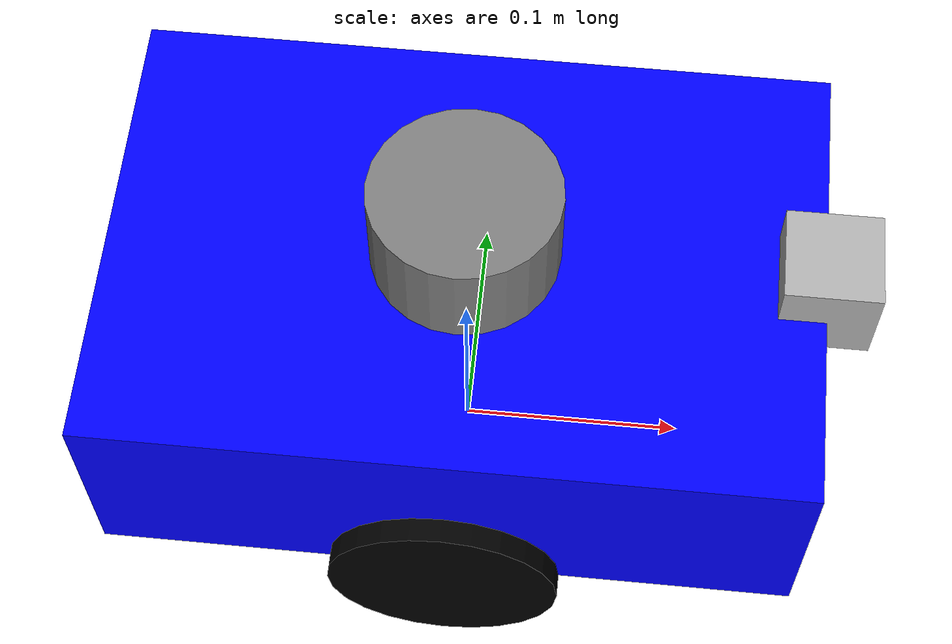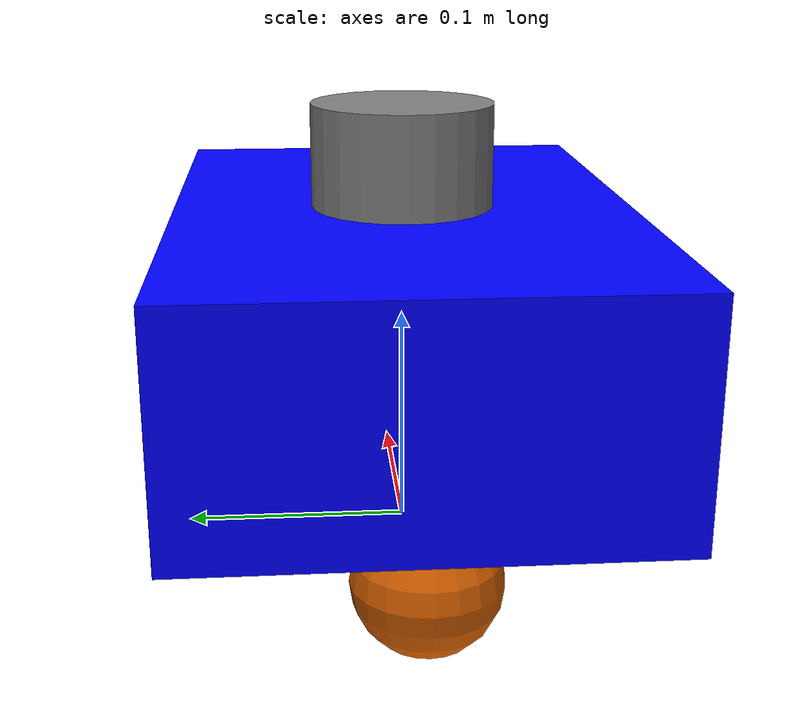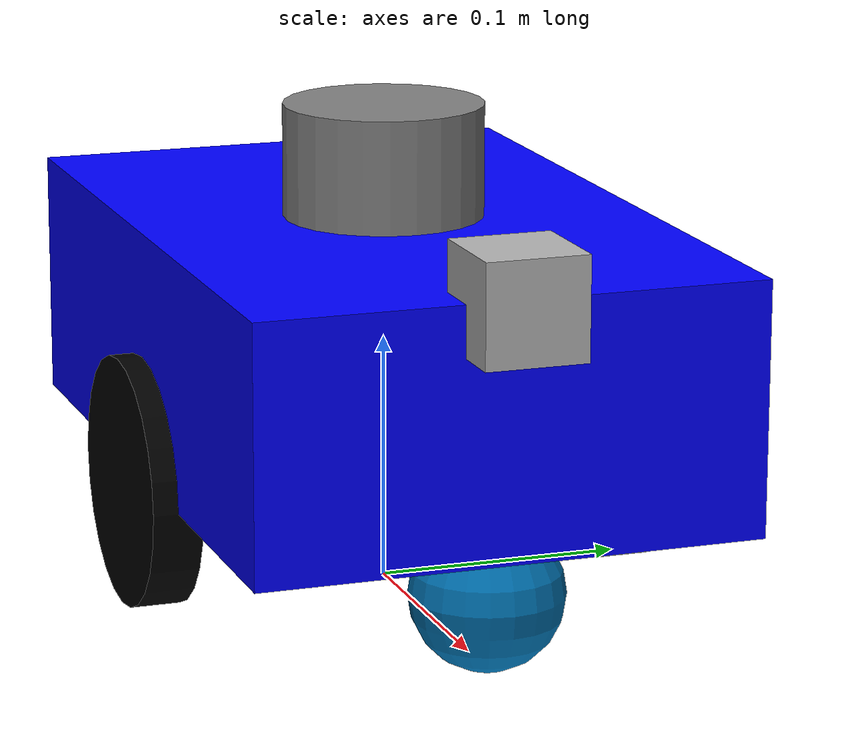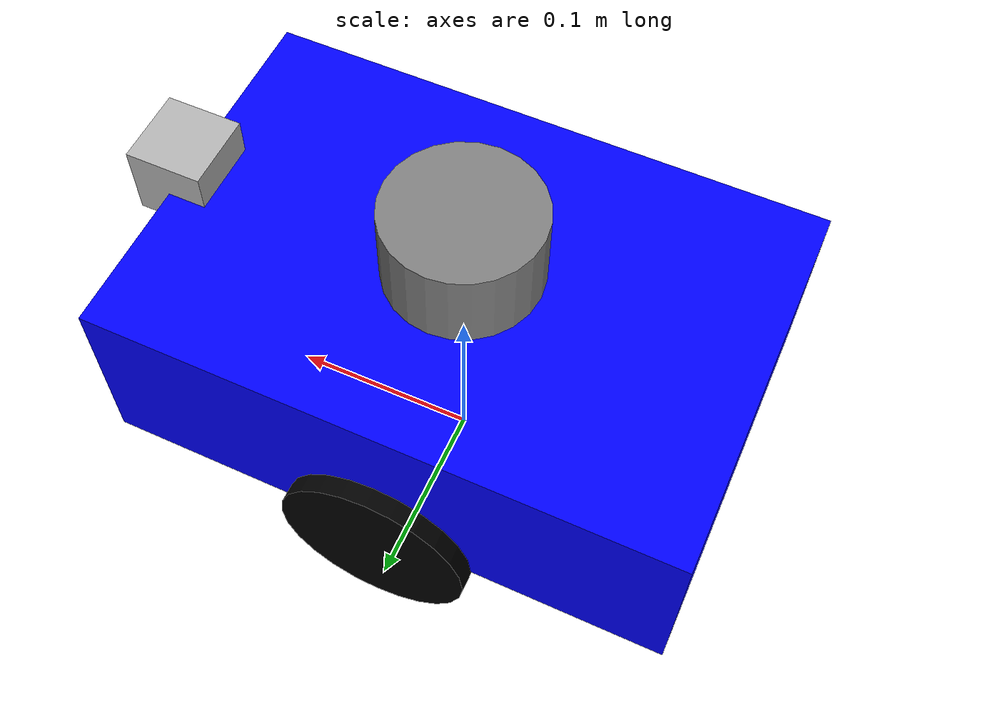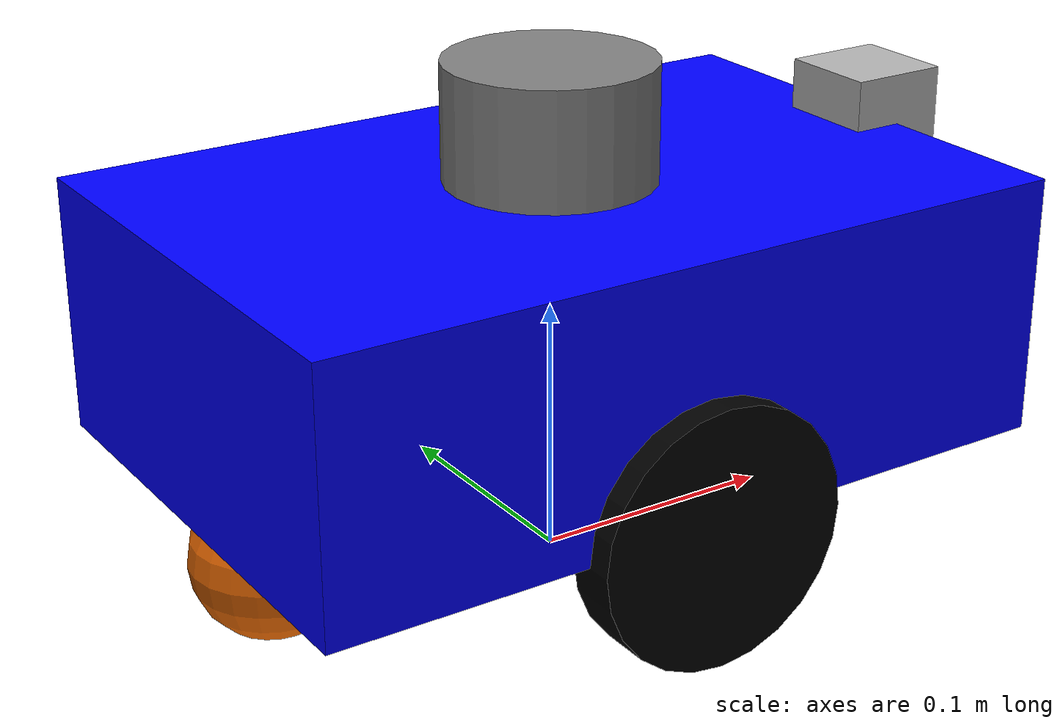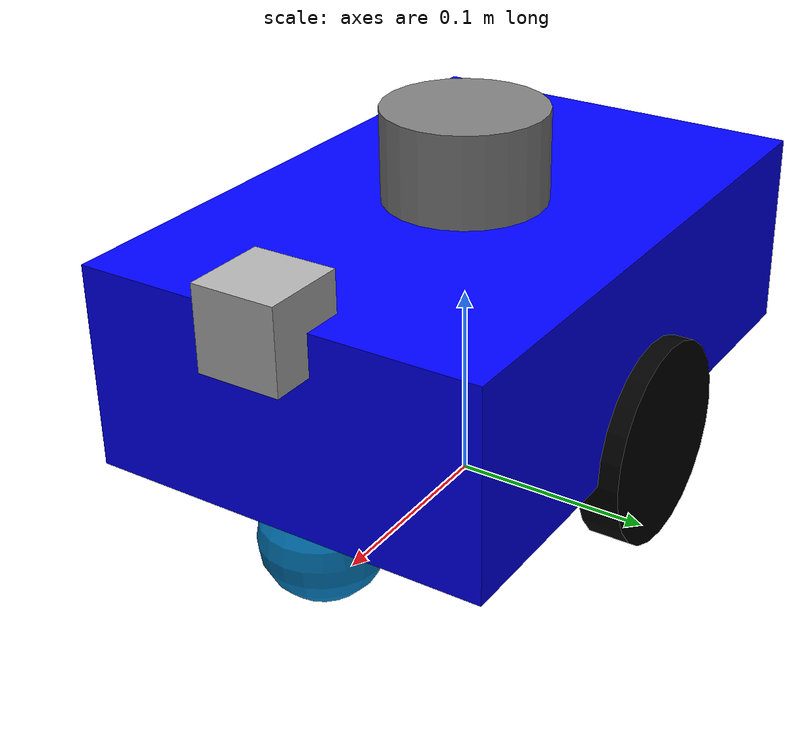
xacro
<?xml version="1.0"?>
<robot name="nexus_ads" xmlns:xacro="http://www.ros.org/wiki/xacro">
    <link name="base_footprint" />
    <joint name="base_footprint_joint" type="fixed">
        <parent link="base_footprint" />
        <child link="base_link" />
        <origin xyz="0 0 0.0" />
    </joint>

    <link name="base_link">
        <visual>
            <origin xyz="0 0 0.10" />
            <geometry>
                <box size="0.3 0.2 0.1" />
            </geometry>
            <material name="blue">
                <color rgba="0 0 1 1" />
            </material>
        </visual>

        <collision>
            <origin xyz="0 0 0.10" />
            <geometry>
                <box size="0.3 0.2 0.1" />
            </geometry>
        </collision>

        <inertial>
            <mass value="5.0" />
            <origin xyz="0 0 0" />
            <inertia ixx="0.1" iyy="0.1" izz="0.1"
                ixy="0" ixz="0" iyz="0" />
        </inertial>
    </link>

    <joint name="left_wheel_joint" type="continuous">
        <parent link="base_link" />
        <child link="left_wheel" />
        <origin xyz="0 0.1 0.05" />
        <axis xyz="0 1 0" />
    </joint>

    <link name="left_wheel">
        <visual>
            <origin rpy="1.5708 0 0" />
            <geometry>
                <cylinder radius="0.05" length="0.02" />
            </geometry>
            <material name="black">
                <color rgba="0 0 0 1" />
            </material>
        </visual>

        <collision>
            <origin rpy="1.5708 0 0" />
            <geometry>
                <cylinder radius="0.05" length="0.02" />
            </geometry>
        </collision>

        <inertial>
            <mass value="0.5" />
            <origin xyz="0 0 0" />
            <inertia ixx="0.001" iyy="0.001" izz="0.001"
                ixy="0" ixz="0" iyz="0" />
        </inertial>
    </link>

    <joint name="right_wheel_joint" type="continuous">
        <parent link="base_link" />
        <child link="right_wheel" />
        <origin xyz="0 -0.1 0.05" />
        <axis xyz="0 1 0" />
    </joint>

    <link name="right_wheel">
        <visual>
            <origin rpy="1.5708 0 0" />
            <geometry>
                <cylinder radius="0.05" length="0.02" />
            </geometry>
            <material name="black">
                <color rgba="0 0 0 1" />
            </material>
        </visual>

        <collision>
            <origin rpy="1.5708 0 0" />
            <geometry>
                <cylinder radius="0.05" length="0.02" />
            </geometry>
        </collision>

        <inertial>
            <mass value="0.5" />
            <origin xyz="0 0 0" />
            <inertia ixx="0.001" iyy="0.001" izz="0.001"
                ixy="0" ixz="0" iyz="0" />
        </inertial>
    </link>

    <link name="caster_wheel_front">
        <visual>
            <geometry>
                <sphere radius="0.03" />
            </geometry>
        </visual>
        <collision>
            <geometry>
                <sphere radius="0.03" />
            </geometry>
        </collision>
        <inertial>
            <mass value="0.2" />
            <inertia ixx="0.0001" iyy="0.0001" izz="0.0001"
                ixy="0" ixz="0" iyz="0" />
        </inertial>
    </link>
    <joint name="caster_front_joint" type="fixed">
        <parent link="base_link" />
        <child link="caster_wheel_front" />
        <origin xyz="0.12 0 0.03" />
        <axis xyz="0 0 1" />
    </joint>

    <link name="caster_wheel_back">
        <visual>
            <geometry>
                <sphere radius="0.03" />
            </geometry>
        </visual>
        <collision>
            <geometry>
                <sphere radius="0.03" />
            </geometry>
        </collision>
        <inertial>
            <origin xyz="0 0 0" />
            <mass value="0.2" />
            <inertia ixx="0.0001" iyy="0.0001" izz="0.0001"
                ixy="0" ixz="0" iyz="0" />
        </inertial>
    </link>
    <joint name="caster_back_joint" type="fixed">
        <parent link="base_link" />
        <child link="caster_wheel_back" />
        <origin xyz="-0.12 0 0.03" />
        <axis xyz="0 0 1" />
    </joint>

    <!-- LiDAR -->
    <link name="lidar_link">
        <visual>
            <origin xyz="0 0 0.02" />
            <geometry>
                <cylinder radius="0.04" length="0.05" />
            </geometry>
            <material name="gray">
                <color rgba="0.5 0.5 0.5 1" />
            </material>
        </visual>
        <collision>
            <origin xyz="0 0 0.02" />
            <geometry>
                <cylinder radius="0.04" length="0.05" />
            </geometry>
        </collision>
        <inertial>
            <mass value="0.3" />
            <origin xyz="0 0 0" />
            <inertia ixx="0.0005" iyy="0.0005" izz="0.0005" ixy="0" ixz="0" iyz="0" />
        </inertial>
    </link>
    <joint name="lidar_joint" type="fixed">
        <parent link="base_link" />
        <child link="lidar_link" />
        <origin xyz="0 0 0.15" />
    </joint>

    <link name="camera_link">
        <visual>
            <geometry>
                <box size="0.04 0.04 0.04" />
            </geometry>
        </visual>
    </link>
    <joint name="camera_joint" type="fixed">
        <parent link="base_link" />
        <child link="camera_link" />
        <origin xyz="0.15 0 0.15" />
    </joint>

    <gazebo>
        <plugin
            filename="libgz-sim-diff-drive-system.so"
            name="gz::sim::systems::DiffDrive">
            <left_joint>left_wheel_joint</left_joint>
            <right_joint>right_wheel_joint</right_joint>
            <wheel_separation>0.2</wheel_separation>
            <wheel_radius>0.05</wheel_radius>
            <topic>/cmd_vel</topic>
            <odom_topic>/odom</odom_topic>
            <tf_topic>/tf</tf_topic>
            <frame_id>odom</frame_id>
            <child_frame_id>base_footprint</child_frame_id>
            <odom_publish_frequency>30</odom_publish_frequency>
        </plugin>
        <plugin filename="gz-sim-joint-state-publisher-system"
            name="gz::sim::systems::JointStatePublisher">
            <topic>joint_states</topic>
            <joint_name>left_wheel_joint</joint_name>
            <joint_name>right_wheel_joint</joint_name>
        </plugin>
    </gazebo>
    <gazebo reference="lidar_link">
        <sensor name="gpu_lidar" type="gpu_lidar">
            <update_rate>10</update_rate>
            <topic>scan</topic>
            <gz_frame_id>lidar_link</gz_frame_id>
            <frame_id>lidar_link</frame_id>
            <lidar>
                <scan>
                    <horizontal>
                        <samples>180</samples>
                        <resolution>1</resolution>
                        <min_angle>-3.14156</min_angle>
                        <max_angle>3.14156</max_angle>
                    </horizontal>
                </scan>
                <range>
                    <min>0.05</min>
                    <max>10.0</max>
                    <resolution>0.01</resolution>
                </range>
                <noise>
                    <type>gaussian</type>
                    <mean>0.0</mean>
                    <stddev>0.01</stddev>
                </noise>
            </lidar>
            <always_on>1</always_on>
            <visualize>true</visualize>
        </sensor>
    </gazebo>
    <gazebo reference="camera_link">
        <sensor name="camera" type="camera">
            <update_rate>30</update_rate>
            <topic>camera/image</topic>
            <camera>
                <horizontal_fov>1.396</horizontal_fov>
                <image>
                    <width>640</width>
                    <height>480</height>
                    <format>R8G8B8</format>
                </image>
            </camera>
        </sensor>
    </gazebo>
    <gazebo>
        <plugin
            filename="gz-sim-sensors-system"
            name="gz::sim::systems::Sensors">
            <render_engine>ogre2</render_engine>
        </plugin>
    </gazebo>
</robot>
